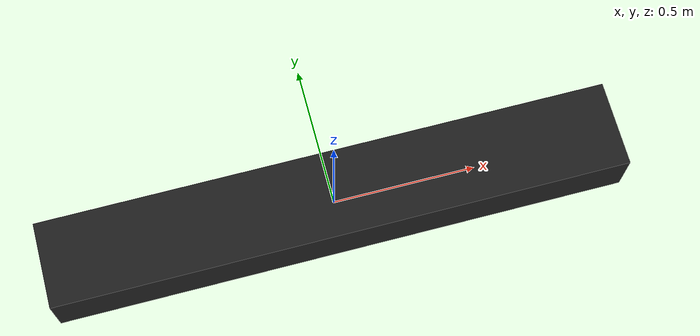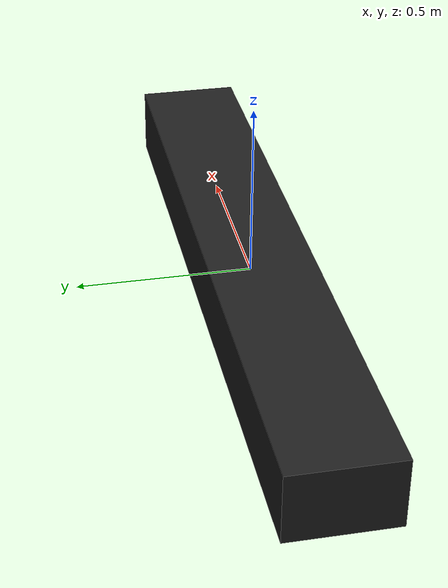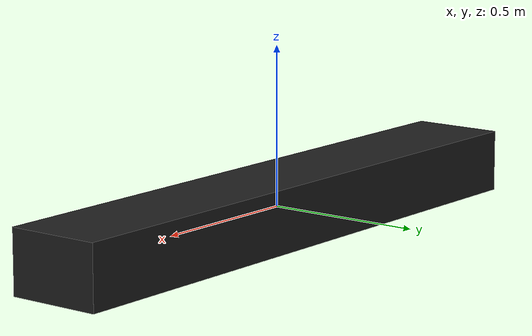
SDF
<?xml version="1.0" ?>
<sdf version="1.5">
	<model name="rectangle_obj">
    		<link name="link">
      		<visual name="visual">
				<geometry>
					<box>
						<size>2 .3 .2</size>
					</box>
				</geometry>
				<material>
					<script>
						<name>Gazebo/Black</name>
					</script>
				</material>
      		</visual>
			<collision name="collision">
				<geometry>
					<box>
						<size>2 .3 .2</size>
					</box>
				</geometry>
			</collision>
		</link>
  	</model>
</sdf>
